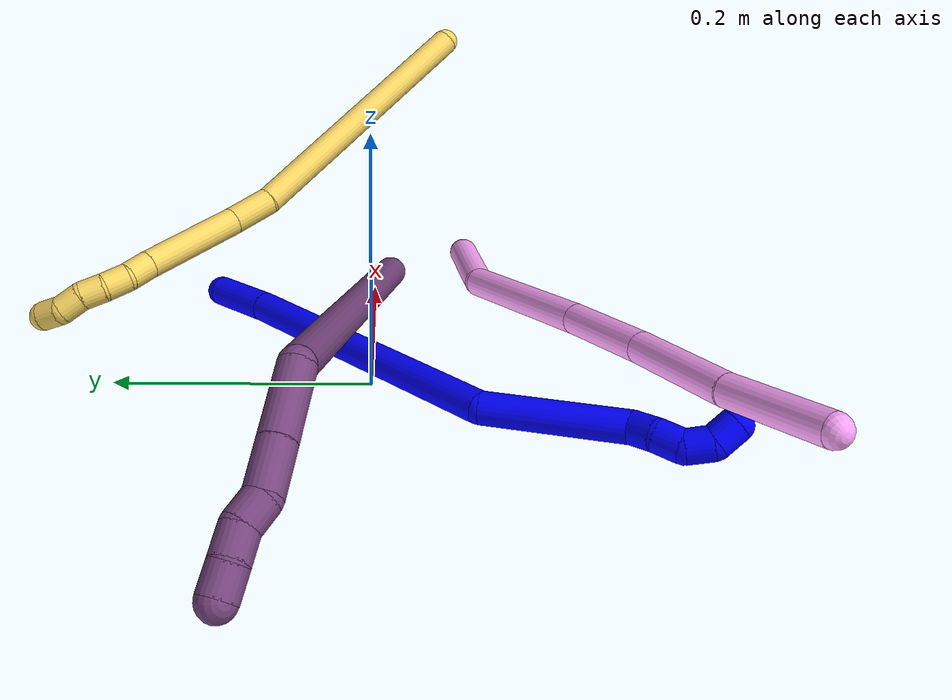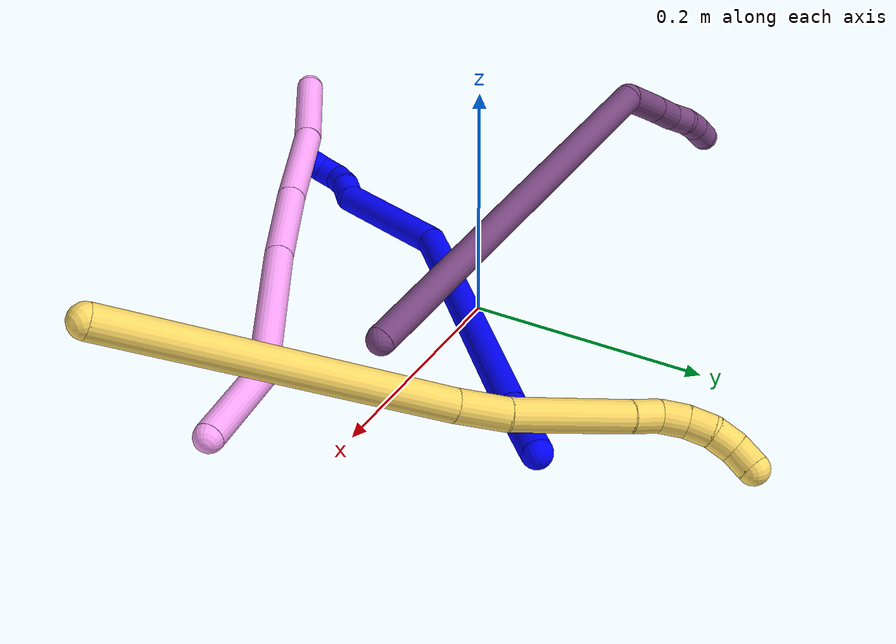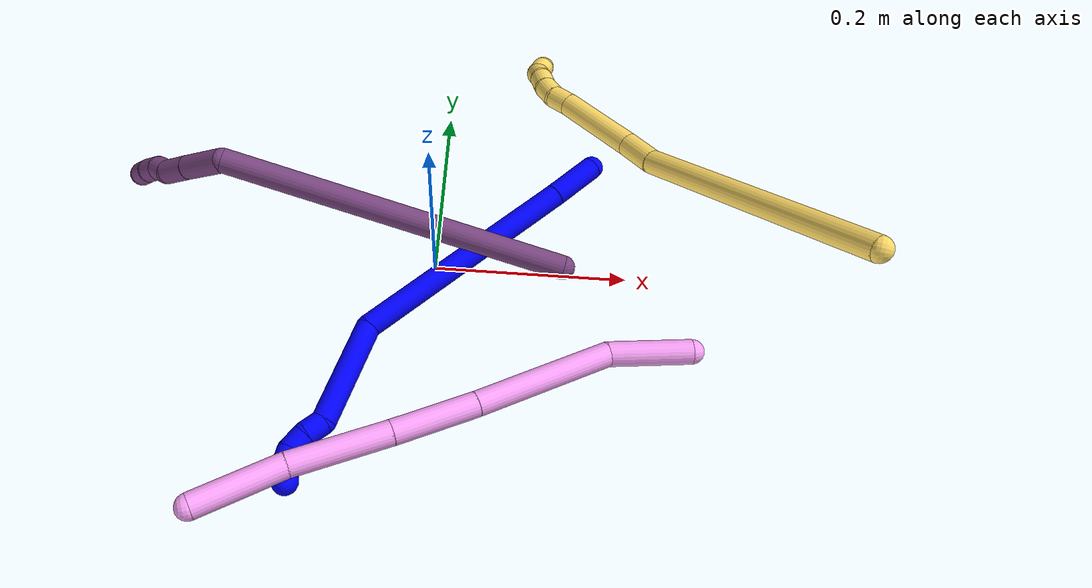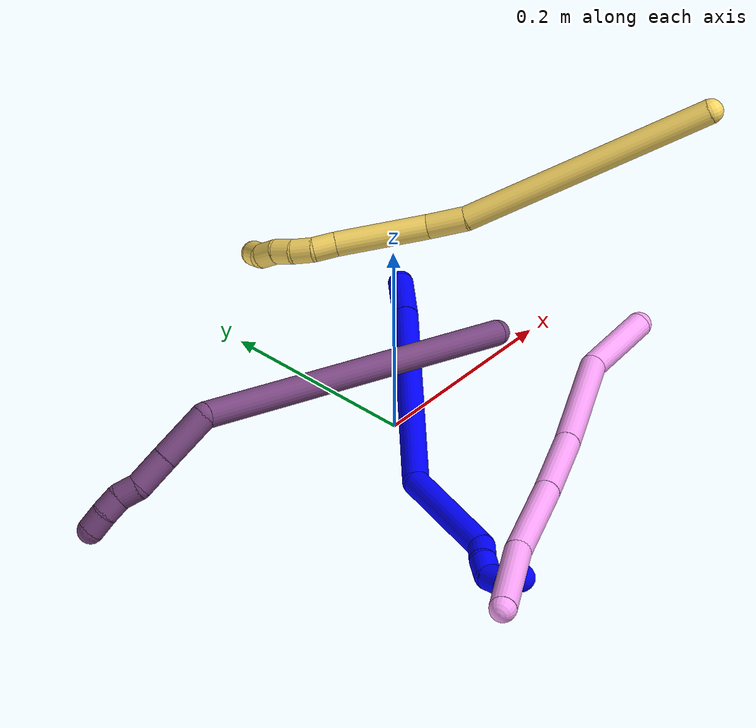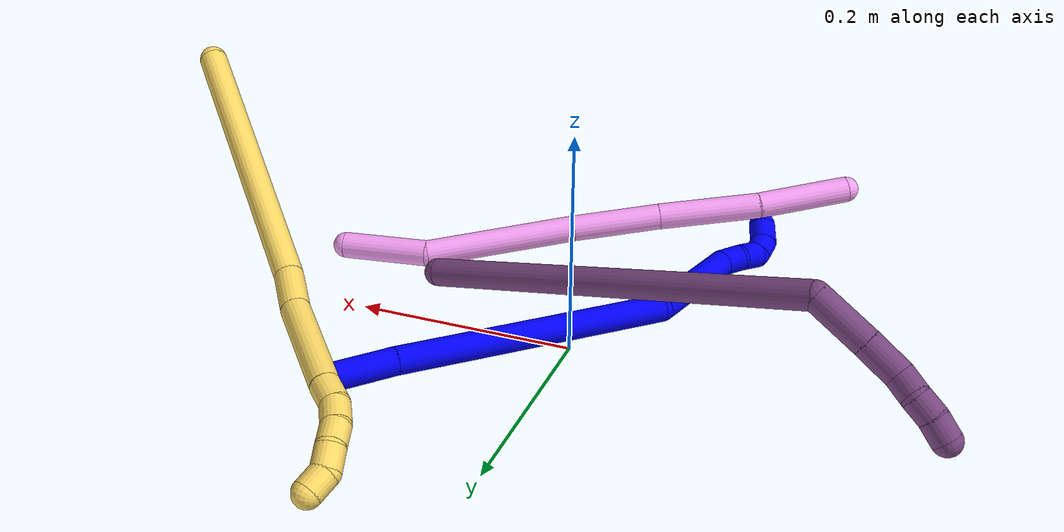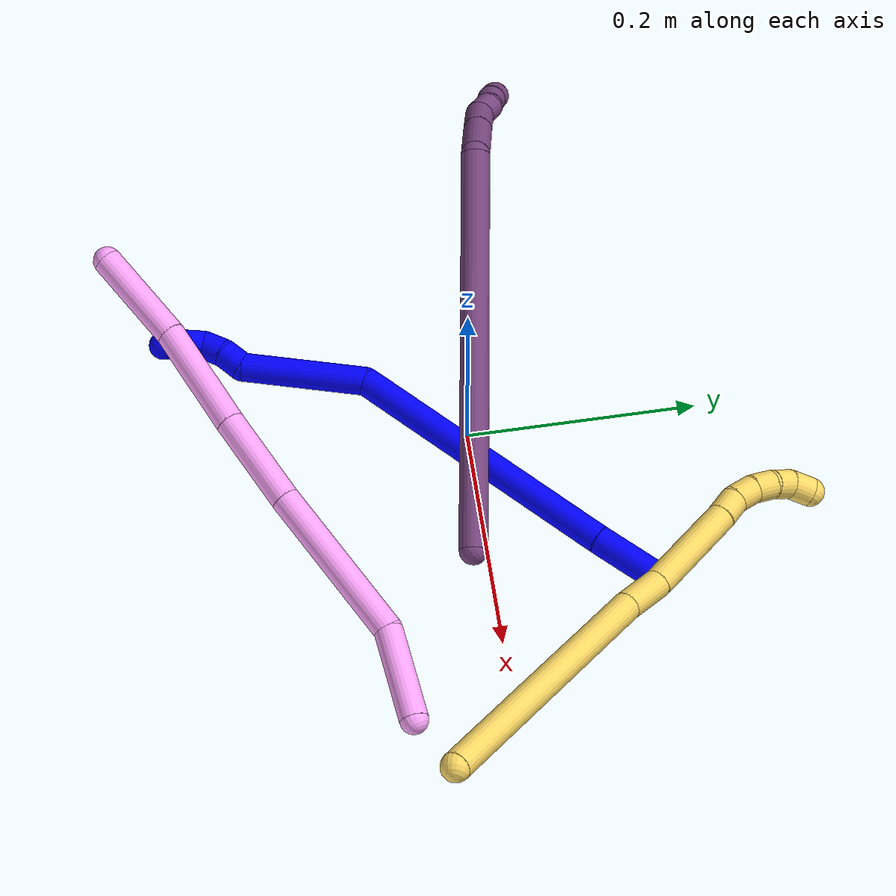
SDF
<sdf version="1.7">
 <world name="default">
  <model name="1">
   <static>0</static>
   <link name="1">
    <collision name="collision-cylinder-e_1_1_4">
     <pose>-0.01456 -0.024942 -0.000536 1.59228 -0.528302 -0.53923</pose>
     <geometry><cylinder><radius>0.0125</radius><length>0.057772</length></cylinder></geometry>
     <surface>
      <friction><ode><mu>1.16</mu><mu2>1.16</mu2><slip1>0</slip1><slip2>0</slip2></ode></friction>
      <contact><ode><kp>1e+06</kp><kd>1</kd><max_vel>0</max_vel><min_depth>0.001</min_depth></ode></contact>
     </surface>
    </collision>
    <visual name="visual-cylinder-e_1_1_4">
     <pose>-0.01456 -0.024942 -0.000536 1.59228 -0.528302 -0.53923</pose>
     <geometry><cylinder><radius>0.0125</radius><length>0.057772</length></cylinder></geometry>
     <material><ambient>0 0 1 1</ambient></material>
    </visual>
    <collision name="collision-cylinder-e_2_4_5">
     <pose>-0.097653 -0.155776 0.000362 1.55726 -0.574349 -0.567036</pose>
     <geometry><cylinder><radius>0.0125</radius><length>0.252285</length></cylinder></geometry>
     <surface>
      <friction><ode><mu>1.16</mu><mu2>1.16</mu2><slip1>0</slip1><slip2>0</slip2></ode></friction>
      <contact><ode><kp>1e+06</kp><kd>1</kd><max_vel>0</max_vel><min_depth>0.001</min_depth></ode></contact>
     </surface>
    </collision>
    <visual name="visual-cylinder-e_2_4_5">
     <pose>-0.097653 -0.155776 0.000362 1.55726 -0.574349 -0.567036</pose>
     <geometry><cylinder><radius>0.0125</radius><length>0.252285</length></cylinder></geometry>
     <material><ambient>0 0 1 1</ambient></material>
    </visual>
    <collision name="collision-cylinder-e_3_5_6">
     <pose>-0.183056 -0.306841 -0.023271 2.07741 -0.315677 -0.528076</pose>
     <geometry><cylinder><radius>0.0125</radius><length>0.108692</length></cylinder></geometry>
     <surface>
      <friction><ode><mu>1.16</mu><mu2>1.16</mu2><slip1>0</slip1><slip2>0</slip2></ode></friction>
      <contact><ode><kp>1e+06</kp><kd>1</kd><max_vel>0</max_vel><min_depth>0.001</min_depth></ode></contact>
     </surface>
    </collision>
    <visual name="visual-cylinder-e_3_5_6">
     <pose>-0.183056 -0.306841 -0.023271 2.07741 -0.315677 -0.528076</pose>
     <geometry><cylinder><radius>0.0125</radius><length>0.108692</length></cylinder></geometry>
     <material><ambient>0 0 1 1</ambient></material>
    </visual>
    <collision name="collision-cylinder-e_4_6_7">
     <pose>-0.204757 -0.361294 -0.047804 1.51334 -0.478987 -0.45316</pose>
     <geometry><cylinder><radius>0.0125</radius><length>0.020954</length></cylinder></geometry>
     <surface>
      <friction><ode><mu>1.16</mu><mu2>1.16</mu2><slip1>0</slip1><slip2>0</slip2></ode></friction>
      <contact><ode><kp>1e+06</kp><kd>1</kd><max_vel>0</max_vel><min_depth>0.001</min_depth></ode></contact>
     </surface>
    </collision>
    <visual name="visual-cylinder-e_4_6_7">
     <pose>-0.204757 -0.361294 -0.047804 1.51334 -0.478987 -0.45316</pose>
     <geometry><cylinder><radius>0.0125</radius><length>0.020954</length></cylinder></geometry>
     <material><ambient>0 0 1 1</ambient></material>
    </visual>
    <collision name="collision-cylinder-e_5_7_8">
     <pose>-0.215298 -0.378702 -0.049162 1.7996 -0.600357 -0.743538</pose>
     <geometry><cylinder><radius>0.0125</radius><length>0.020221</length></cylinder></geometry>
     <surface>
      <friction><ode><mu>1.16</mu><mu2>1.16</mu2><slip1>0</slip1><slip2>0</slip2></ode></friction>
      <contact><ode><kp>1e+06</kp><kd>1</kd><max_vel>0</max_vel><min_depth>0.001</min_depth></ode></contact>
     </surface>
    </collision>
    <visual name="visual-cylinder-e_5_7_8">
     <pose>-0.215298 -0.378702 -0.049162 1.7996 -0.600357 -0.743538</pose>
     <geometry><cylinder><radius>0.0125</radius><length>0.020221</length></cylinder></geometry>
     <material><ambient>0 0 1 1</ambient></material>
    </visual>
    <collision name="collision-cylinder-e_6_8_9">
     <pose>-0.221551 -0.395398 -0.056208 2.11217 -0.054146 -0.095689</pose>
     <geometry><cylinder><radius>0.0125</radius><length>0.020031</length></cylinder></geometry>
     <surface>
      <friction><ode><mu>1.16</mu><mu2>1.16</mu2><slip1>0</slip1><slip2>0</slip2></ode></friction>
      <contact><ode><kp>1e+06</kp><kd>1</kd><max_vel>0</max_vel><min_depth>0.001</min_depth></ode></contact>
     </surface>
    </collision>
    <visual name="visual-cylinder-e_6_8_9">
     <pose>-0.221551 -0.395398 -0.056208 2.11217 -0.054146 -0.095689</pose>
     <geometry><cylinder><radius>0.0125</radius><length>0.020031</length></cylinder></geometry>
     <material><ambient>0 0 1 1</ambient></material>
    </visual>
    <collision name="collision-cylinder-e_7_9_2">
     <pose>-0.217124 -0.411019 -0.066466 2.19746 0.518817 0.958709</pose>
     <geometry><cylinder><radius>0.0125</radius><length>0.020046</length></cylinder></geometry>
     <surface>
      <friction><ode><mu>1.16</mu><mu2>1.16</mu2><slip1>0</slip1><slip2>0</slip2></ode></friction>
      <contact><ode><kp>1e+06</kp><kd>1</kd><max_vel>0</max_vel><min_depth>0.001</min_depth></ode></contact>
     </surface>
    </collision>
    <visual name="visual-cylinder-e_7_9_2">
     <pose>-0.217124 -0.411019 -0.066466 2.19746 0.518817 0.958709</pose>
     <geometry><cylinder><radius>0.0125</radius><length>0.020046</length></cylinder></geometry>
     <material><ambient>0 0 1 1</ambient></material>
    </visual>
    <collision name="collision-sphere-2">
     <pose>-0.212154 -0.418069 -0.071571 0 -0 0</pose>
     <geometry><sphere><radius>0.0125</radius></sphere></geometry>
     <surface>
      <friction><ode><mu>1.16</mu><mu2>1.16</mu2><slip1>0</slip1><slip2>0</slip2></ode></friction>
      <contact><ode><kp>1e+06</kp><kd>1</kd><max_vel>0</max_vel><min_depth>0.001</min_depth></ode></contact>
     </surface>
    </collision>
    <visual name="visual-sphere-2">
     <pose>-0.212154 -0.418069 -0.071571 0 -0 0</pose>
     <geometry><sphere><radius>0.0125</radius></sphere></geometry>
     <material><ambient>0 0 1 1</ambient></material>
    </visual>
    <collision name="collision-sphere-9">
     <pose>-0.222093 -0.403969 -0.061362 0 -0 0</pose>
     <geometry><sphere><radius>0.0125</radius></sphere></geometry>
     <surface>
      <friction><ode><mu>1.16</mu><mu2>1.16</mu2><slip1>0</slip1><slip2>0</slip2></ode></friction>
      <contact><ode><kp>1e+06</kp><kd>1</kd><max_vel>0</max_vel><min_depth>0.001</min_depth></ode></contact>
     </surface>
    </collision>
    <visual name="visual-sphere-9">
     <pose>-0.222093 -0.403969 -0.061362 0 -0 0</pose>
     <geometry><sphere><radius>0.0125</radius></sphere></geometry>
     <material><ambient>0 0 1 1</ambient></material>
    </visual>
    <collision name="collision-sphere-4">
     <pose>-0.029121 -0.049884 -0.001072 0 -0 0</pose>
     <geometry><sphere><radius>0.0125</radius></sphere></geometry>
     <surface>
      <friction><ode><mu>1.16</mu><mu2>1.16</mu2><slip1>0</slip1><slip2>0</slip2></ode></friction>
      <contact><ode><kp>1e+06</kp><kd>1</kd><max_vel>0</max_vel><min_depth>0.001</min_depth></ode></contact>
     </surface>
    </collision>
    <visual name="visual-sphere-4">
     <pose>-0.029121 -0.049884 -0.001072 0 -0 0</pose>
     <geometry><sphere><radius>0.0125</radius></sphere></geometry>
     <material><ambient>0 0 1 1</ambient></material>
    </visual>
    <collision name="collision-sphere-1">
     <geometry><sphere><radius>0.0125</radius></sphere></geometry>
     <surface>
      <friction><ode><mu>1.16</mu><mu2>1.16</mu2><slip1>0</slip1><slip2>0</slip2></ode></friction>
      <contact><ode><kp>1e+06</kp><kd>1</kd><max_vel>0</max_vel><min_depth>0.001</min_depth></ode></contact>
     </surface>
    </collision>
    <visual name="visual-sphere-1">
     <geometry><sphere><radius>0.0125</radius></sphere></geometry>
     <material><ambient>0 0 1 1</ambient></material>
    </visual>
    <collision name="collision-sphere-8">
     <pose>-0.221009 -0.386827 -0.051055 0 -0 0</pose>
     <geometry><sphere><radius>0.0125</radius></sphere></geometry>
     <surface>
      <friction><ode><mu>1.16</mu><mu2>1.16</mu2><slip1>0</slip1><slip2>0</slip2></ode></friction>
      <contact><ode><kp>1e+06</kp><kd>1</kd><max_vel>0</max_vel><min_depth>0.001</min_depth></ode></contact>
     </surface>
    </collision>
    <visual name="visual-sphere-8">
     <pose>-0.221009 -0.386827 -0.051055 0 -0 0</pose>
     <geometry><sphere><radius>0.0125</radius></sphere></geometry>
     <material><ambient>0 0 1 1</ambient></material>
    </visual>
    <collision name="collision-sphere-5">
     <pose>-0.166184 -0.261669 0.001795 0 -0 0</pose>
     <geometry><sphere><radius>0.0125</radius></sphere></geometry>
     <surface>
      <friction><ode><mu>1.16</mu><mu2>1.16</mu2><slip1>0</slip1><slip2>0</slip2></ode></friction>
      <contact><ode><kp>1e+06</kp><kd>1</kd><max_vel>0</max_vel><min_depth>0.001</min_depth></ode></contact>
     </surface>
    </collision>
    <visual name="visual-sphere-5">
     <pose>-0.166184 -0.261669 0.001795 0 -0 0</pose>
     <geometry><sphere><radius>0.0125</radius></sphere></geometry>
     <material><ambient>0 0 1 1</ambient></material>
    </visual>
    <collision name="collision-sphere-6">
     <pose>-0.199929 -0.352012 -0.048338 0 -0 0</pose>
     <geometry><sphere><radius>0.0125</radius></sphere></geometry>
     <surface>
      <friction><ode><mu>1.16</mu><mu2>1.16</mu2><slip1>0</slip1><slip2>0</slip2></ode></friction>
      <contact><ode><kp>1e+06</kp><kd>1</kd><max_vel>0</max_vel><min_depth>0.001</min_depth></ode></contact>
     </surface>
    </collision>
    <visual name="visual-sphere-6">
     <pose>-0.199929 -0.352012 -0.048338 0 -0 0</pose>
     <geometry><sphere><radius>0.0125</radius></sphere></geometry>
     <material><ambient>0 0 1 1</ambient></material>
    </visual>
    <collision name="collision-sphere-7">
     <pose>-0.209586 -0.370577 -0.04727 0 -0 0</pose>
     <geometry><sphere><radius>0.0125</radius></sphere></geometry>
     <surface>
      <friction><ode><mu>1.16</mu><mu2>1.16</mu2><slip1>0</slip1><slip2>0</slip2></ode></friction>
      <contact><ode><kp>1e+06</kp><kd>1</kd><max_vel>0</max_vel><min_depth>0.001</min_depth></ode></contact>
     </surface>
    </collision>
    <visual name="visual-sphere-7">
     <pose>-0.209586 -0.370577 -0.04727 0 -0 0</pose>
     <geometry><sphere><radius>0.0125</radius></sphere></geometry>
     <material><ambient>0 0 1 1</ambient></material>
    </visual>
    <inertial>
     <pose>-0.125617 -0.210959 -0.013846 0 -0 0</pose>
     <mass>0.5</mass>
     <inertia>
      <ixx>0.000377</ixx>
      <ixy>0</ixy>
      <ixz>0</ixz>
      <iyy>-0.000321</iyy>
      <iyz>0</iyz>
      <izz>0.002016</izz>
     </inertia>
    </inertial>
   </link>
   <pose>0.162557 0.135919 0.011476 -0.957283 -0.911747 0.267832</pose>
  </model>
  <model name="4">
   <static>0</static>
   <link name="4">
    <collision name="collision-cylinder-e_1_1_4">
     <pose>0.007996 0.004889 -0.040845 -3.02245 0.19198 -2.03245</pose>
     <geometry><cylinder><radius>0.0125</radius><length>0.083813</length></cylinder></geometry>
     <surface>
      <friction><ode><mu>1.16</mu><mu2>1.16</mu2><slip1>0</slip1><slip2>0</slip2></ode></friction>
      <contact><ode><kp>1e+06</kp><kd>1</kd><max_vel>0</max_vel><min_depth>0.001</min_depth></ode></contact>
     </surface>
    </collision>
    <visual name="visual-cylinder-e_1_1_4">
     <pose>0.007996 0.004889 -0.040845 -3.02245 0.19198 -2.03245</pose>
     <geometry><cylinder><radius>0.0125</radius><length>0.083813</length></cylinder></geometry>
     <material><ambient>1 0.65098 0.996078 1</ambient></material>
    </visual>
    <collision name="collision-cylinder-e_2_4_5">
     <pose>0.002675 0.007701 -0.152722 3.11235 -0.185244 -2.82934</pose>
     <geometry><cylinder><radius>0.0125</radius><length>0.144599</length></cylinder></geometry>
     <surface>
      <friction><ode><mu>1.16</mu><mu2>1.16</mu2><slip1>0</slip1><slip2>0</slip2></ode></friction>
      <contact><ode><kp>1e+06</kp><kd>1</kd><max_vel>0</max_vel><min_depth>0.001</min_depth></ode></contact>
     </surface>
    </collision>
    <visual name="visual-cylinder-e_2_4_5">
     <pose>0.002675 0.007701 -0.152722 3.11235 -0.185244 -2.82934</pose>
     <geometry><cylinder><radius>0.0125</radius><length>0.144599</length></cylinder></geometry>
     <material><ambient>1 0.65098 0.996078 1</ambient></material>
    </visual>
    <collision name="collision-cylinder-e_3_5_6">
     <pose>-0.016622 0.005123 -0.265676 3.12965 -0.141684 -2.97371</pose>
     <geometry><cylinder><radius>0.0125</radius><length>0.084699</length></cylinder></geometry>
     <surface>
      <friction><ode><mu>1.16</mu><mu2>1.16</mu2><slip1>0</slip1><slip2>0</slip2></ode></friction>
      <contact><ode><kp>1e+06</kp><kd>1</kd><max_vel>0</max_vel><min_depth>0.001</min_depth></ode></contact>
     </surface>
    </collision>
    <visual name="visual-cylinder-e_3_5_6">
     <pose>-0.016622 0.005123 -0.265676 3.12965 -0.141684 -2.97371</pose>
     <geometry><cylinder><radius>0.0125</radius><length>0.084699</length></cylinder></geometry>
     <material><ambient>1 0.65098 0.996078 1</ambient></material>
    </visual>
    <collision name="collision-cylinder-e_4_6_7">
     <pose>-0.027709 0.004419 -0.356409 3.13743 -0.104261 -3.06182</pose>
     <geometry><cylinder><radius>0.0125</radius><length>0.098155</length></cylinder></geometry>
     <surface>
      <friction><ode><mu>1.16</mu><mu2>1.16</mu2><slip1>0</slip1><slip2>0</slip2></ode></friction>
      <contact><ode><kp>1e+06</kp><kd>1</kd><max_vel>0</max_vel><min_depth>0.001</min_depth></ode></contact>
     </surface>
    </collision>
    <visual name="visual-cylinder-e_4_6_7">
     <pose>-0.027709 0.004419 -0.356409 3.13743 -0.104261 -3.06182</pose>
     <geometry><cylinder><radius>0.0125</radius><length>0.098155</length></cylinder></geometry>
     <material><ambient>1 0.65098 0.996078 1</ambient></material>
    </visual>
    <collision name="collision-cylinder-e_5_7_2">
     <pose>-0.042373 0.001679 -0.448471 3.083 -0.217084 -2.61617</pose>
     <geometry><cylinder><radius>0.0125</radius><length>0.088735</length></cylinder></geometry>
     <surface>
      <friction><ode><mu>1.16</mu><mu2>1.16</mu2><slip1>0</slip1><slip2>0</slip2></ode></friction>
      <contact><ode><kp>1e+06</kp><kd>1</kd><max_vel>0</max_vel><min_depth>0.001</min_depth></ode></contact>
     </surface>
    </collision>
    <visual name="visual-cylinder-e_5_7_2">
     <pose>-0.042373 0.001679 -0.448471 3.083 -0.217084 -2.61617</pose>
     <geometry><cylinder><radius>0.0125</radius><length>0.088735</length></cylinder></geometry>
     <material><ambient>1 0.65098 0.996078 1</ambient></material>
    </visual>
    <collision name="collision-sphere-2">
     <pose>-0.051929 -0.000858 -0.491722 0 -0 0</pose>
     <geometry><sphere><radius>0.0125</radius></sphere></geometry>
     <surface>
      <friction><ode><mu>1.16</mu><mu2>1.16</mu2><slip1>0</slip1><slip2>0</slip2></ode></friction>
      <contact><ode><kp>1e+06</kp><kd>1</kd><max_vel>0</max_vel><min_depth>0.001</min_depth></ode></contact>
     </surface>
    </collision>
    <visual name="visual-sphere-2">
     <pose>-0.051929 -0.000858 -0.491722 0 -0 0</pose>
     <geometry><sphere><radius>0.0125</radius></sphere></geometry>
     <material><ambient>1 0.65098 0.996078 1</ambient></material>
    </visual>
    <collision name="collision-sphere-7">
     <pose>-0.032817 0.004216 -0.405219 0 -0 0</pose>
     <geometry><sphere><radius>0.0125</radius></sphere></geometry>
     <surface>
      <friction><ode><mu>1.16</mu><mu2>1.16</mu2><slip1>0</slip1><slip2>0</slip2></ode></friction>
      <contact><ode><kp>1e+06</kp><kd>1</kd><max_vel>0</max_vel><min_depth>0.001</min_depth></ode></contact>
     </surface>
    </collision>
    <visual name="visual-sphere-7">
     <pose>-0.032817 0.004216 -0.405219 0 -0 0</pose>
     <geometry><sphere><radius>0.0125</radius></sphere></geometry>
     <material><ambient>1 0.65098 0.996078 1</ambient></material>
    </visual>
    <collision name="collision-sphere-6">
     <pose>-0.022602 0.004622 -0.307598 0 -0 0</pose>
     <geometry><sphere><radius>0.0125</radius></sphere></geometry>
     <surface>
      <friction><ode><mu>1.16</mu><mu2>1.16</mu2><slip1>0</slip1><slip2>0</slip2></ode></friction>
      <contact><ode><kp>1e+06</kp><kd>1</kd><max_vel>0</max_vel><min_depth>0.001</min_depth></ode></contact>
     </surface>
    </collision>
    <visual name="visual-sphere-6">
     <pose>-0.022602 0.004622 -0.307598 0 -0 0</pose>
     <geometry><sphere><radius>0.0125</radius></sphere></geometry>
     <material><ambient>1 0.65098 0.996078 1</ambient></material>
    </visual>
    <collision name="collision-sphere-5">
     <pose>-0.010641 0.005624 -0.223754 0 -0 0</pose>
     <geometry><sphere><radius>0.0125</radius></sphere></geometry>
     <surface>
      <friction><ode><mu>1.16</mu><mu2>1.16</mu2><slip1>0</slip1><slip2>0</slip2></ode></friction>
      <contact><ode><kp>1e+06</kp><kd>1</kd><max_vel>0</max_vel><min_depth>0.001</min_depth></ode></contact>
     </surface>
    </collision>
    <visual name="visual-sphere-5">
     <pose>-0.010641 0.005624 -0.223754 0 -0 0</pose>
     <geometry><sphere><radius>0.0125</radius></sphere></geometry>
     <material><ambient>1 0.65098 0.996078 1</ambient></material>
    </visual>
    <collision name="collision-sphere-1">
     <geometry><sphere><radius>0.0125</radius></sphere></geometry>
     <surface>
      <friction><ode><mu>1.16</mu><mu2>1.16</mu2><slip1>0</slip1><slip2>0</slip2></ode></friction>
      <contact><ode><kp>1e+06</kp><kd>1</kd><max_vel>0</max_vel><min_depth>0.001</min_depth></ode></contact>
     </surface>
    </collision>
    <visual name="visual-sphere-1">
     <geometry><sphere><radius>0.0125</radius></sphere></geometry>
     <material><ambient>1 0.65098 0.996078 1</ambient></material>
    </visual>
    <collision name="collision-sphere-4">
     <pose>0.015992 0.009779 -0.08169 0 -0 0</pose>
     <geometry><sphere><radius>0.0125</radius></sphere></geometry>
     <surface>
      <friction><ode><mu>1.16</mu><mu2>1.16</mu2><slip1>0</slip1><slip2>0</slip2></ode></friction>
      <contact><ode><kp>1e+06</kp><kd>1</kd><max_vel>0</max_vel><min_depth>0.001</min_depth></ode></contact>
     </surface>
    </collision>
    <visual name="visual-sphere-4">
     <pose>0.015992 0.009779 -0.08169 0 -0 0</pose>
     <geometry><sphere><radius>0.0125</radius></sphere></geometry>
     <material><ambient>1 0.65098 0.996078 1</ambient></material>
    </visual>
    <inertial>
     <pose>-0.013661 0.00508 -0.245575 0 -0 0</pose>
     <mass>0.5</mass>
     <inertia>
      <ixx>-0.000624</ixx>
      <ixy>0</ixy>
      <ixz>0</ixz>
      <iyy>0.000289</iyy>
      <iyz>0</iyz>
      <izz>3.4e-05</izz>
     </inertia>
    </inertial>
   </link>
   <pose>0.263365 -0.084213 0.012534 1.62122 0.624529 1.94171</pose>
  </model>
  <model name="5">
   <static>0</static>
   <link name="5">
    <collision name="collision-cylinder-e_1_1_4">
     <pose>-0.061371 0.0459 0.106477 -0.407008 -0.486807 0.1024</pose>
     <geometry><cylinder><radius>0.0125</radius><length>0.262379</length></cylinder></geometry>
     <surface>
      <friction><ode><mu>1.16</mu><mu2>1.16</mu2><slip1>0</slip1><slip2>0</slip2></ode></friction>
      <contact><ode><kp>1e+06</kp><kd>1</kd><max_vel>0</max_vel><min_depth>0.001</min_depth></ode></contact>
     </surface>
    </collision>
    <visual name="visual-cylinder-e_1_1_4">
     <pose>-0.061371 0.0459 0.106477 -0.407008 -0.486807 0.1024</pose>
     <geometry><cylinder><radius>0.0125</radius><length>0.262379</length></cylinder></geometry>
     <material><ambient>1 0.858824 0.4 1</ambient></material>
    </visual>
    <collision name="collision-cylinder-e_2_4_5">
     <pose>-0.130003 0.102115 0.228318 -0.591255 -0.373895 0.115088</pose>
     <geometry><cylinder><radius>0.0125</radius><length>0.039755</length></cylinder></geometry>
     <surface>
      <friction><ode><mu>1.16</mu><mu2>1.16</mu2><slip1>0</slip1><slip2>0</slip2></ode></friction>
      <contact><ode><kp>1e+06</kp><kd>1</kd><max_vel>0</max_vel><min_depth>0.001</min_depth></ode></contact>
     </surface>
    </collision>
    <visual name="visual-cylinder-e_2_4_5">
     <pose>-0.130003 0.102115 0.228318 -0.591255 -0.373895 0.115088</pose>
     <geometry><cylinder><radius>0.0125</radius><length>0.039755</length></cylinder></geometry>
     <material><ambient>1 0.858824 0.4 1</ambient></material>
    </visual>
    <collision name="collision-cylinder-e_3_5_6">
     <pose>-0.14886 0.134104 0.28298 -0.504024 -0.252874 0.065437</pose>
     <geometry><cylinder><radius>0.0125</radius><length>0.09271</length></cylinder></geometry>
     <surface>
      <friction><ode><mu>1.16</mu><mu2>1.16</mu2><slip1>0</slip1><slip2>0</slip2></ode></friction>
      <contact><ode><kp>1e+06</kp><kd>1</kd><max_vel>0</max_vel><min_depth>0.001</min_depth></ode></contact>
     </surface>
    </collision>
    <visual name="visual-cylinder-e_3_5_6">
     <pose>-0.14886 0.134104 0.28298 -0.504024 -0.252874 0.065437</pose>
     <geometry><cylinder><radius>0.0125</radius><length>0.09271</length></cylinder></geometry>
     <material><ambient>1 0.858824 0.4 1</ambient></material>
    </visual>
    <collision name="collision-cylinder-e_4_6_7">
     <pose>-0.163235 0.160231 0.332441 -0.412904 -0.245311 0.051625</pose>
     <geometry><cylinder><radius>0.0125</radius><length>0.022873</length></cylinder></geometry>
     <surface>
      <friction><ode><mu>1.16</mu><mu2>1.16</mu2><slip1>0</slip1><slip2>0</slip2></ode></friction>
      <contact><ode><kp>1e+06</kp><kd>1</kd><max_vel>0</max_vel><min_depth>0.001</min_depth></ode></contact>
     </surface>
    </collision>
    <visual name="visual-cylinder-e_4_6_7">
     <pose>-0.163235 0.160231 0.332441 -0.412904 -0.245311 0.051625</pose>
     <geometry><cylinder><radius>0.0125</radius><length>0.022873</length></cylinder></geometry>
     <material><ambient>1 0.858824 0.4 1</ambient></material>
    </visual>
    <collision name="collision-cylinder-e_5_7_8">
     <pose>-0.169645 0.171414 0.35017 -0.727059 -0.344405 0.132143</pose>
     <geometry><cylinder><radius>0.0125</radius><length>0.021518</length></cylinder></geometry>
     <surface>
      <friction><ode><mu>1.16</mu><mu2>1.16</mu2><slip1>0</slip1><slip2>0</slip2></ode></friction>
      <contact><ode><kp>1e+06</kp><kd>1</kd><max_vel>0</max_vel><min_depth>0.001</min_depth></ode></contact>
     </surface>
    </collision>
    <visual name="visual-cylinder-e_5_7_8">
     <pose>-0.169645 0.171414 0.35017 -0.727059 -0.344405 0.132143</pose>
     <geometry><cylinder><radius>0.0125</radius><length>0.021518</length></cylinder></geometry>
     <material><ambient>1 0.858824 0.4 1</ambient></material>
    </visual>
    <collision name="collision-cylinder-e_6_8_9">
     <pose>-0.177495 0.185659 0.362849 -0.973313 -0.434503 0.232529</pose>
     <geometry><cylinder><radius>0.0125</radius><length>0.020037</length></cylinder></geometry>
     <surface>
      <friction><ode><mu>1.16</mu><mu2>1.16</mu2><slip1>0</slip1><slip2>0</slip2></ode></friction>
      <contact><ode><kp>1e+06</kp><kd>1</kd><max_vel>0</max_vel><min_depth>0.001</min_depth></ode></contact>
     </surface>
    </collision>
    <visual name="visual-cylinder-e_6_8_9">
     <pose>-0.177495 0.185659 0.362849 -0.973313 -0.434503 0.232529</pose>
     <geometry><cylinder><radius>0.0125</radius><length>0.020037</length></cylinder></geometry>
     <material><ambient>1 0.858824 0.4 1</ambient></material>
    </visual>
    <collision name="collision-cylinder-e_7_9_10">
     <pose>-0.188515 0.199475 0.372459 -0.951008 -0.720787 0.383326</pose>
     <geometry><cylinder><radius>0.0125</radius><length>0.020613</length></cylinder></geometry>
     <surface>
      <friction><ode><mu>1.16</mu><mu2>1.16</mu2><slip1>0</slip1><slip2>0</slip2></ode></friction>
      <contact><ode><kp>1e+06</kp><kd>1</kd><max_vel>0</max_vel><min_depth>0.001</min_depth></ode></contact>
     </surface>
    </collision>
    <visual name="visual-cylinder-e_7_9_10">
     <pose>-0.188515 0.199475 0.372459 -0.951008 -0.720787 0.383326</pose>
     <geometry><cylinder><radius>0.0125</radius><length>0.020613</length></cylinder></geometry>
     <material><ambient>1 0.858824 0.4 1</ambient></material>
    </visual>
    <collision name="collision-cylinder-e_8_10_2">
     <pose>-0.201165 0.213954 0.376631 -1.61053 -0.620521 0.644008</pose>
     <geometry><cylinder><radius>0.0125</radius><length>0.020115</length></cylinder></geometry>
     <surface>
      <friction><ode><mu>1.16</mu><mu2>1.16</mu2><slip1>0</slip1><slip2>0</slip2></ode></friction>
      <contact><ode><kp>1e+06</kp><kd>1</kd><max_vel>0</max_vel><min_depth>0.001</min_depth></ode></contact>
     </surface>
    </collision>
    <visual name="visual-cylinder-e_8_10_2">
     <pose>-0.201165 0.213954 0.376631 -1.61053 -0.620521 0.644008</pose>
     <geometry><cylinder><radius>0.0125</radius><length>0.020115</length></cylinder></geometry>
     <material><ambient>1 0.858824 0.4 1</ambient></material>
    </visual>
    <collision name="collision-sphere-2">
     <pose>-0.207013 0.22213 0.376306 0 -0 0</pose>
     <geometry><sphere><radius>0.0125</radius></sphere></geometry>
     <surface>
      <friction><ode><mu>1.16</mu><mu2>1.16</mu2><slip1>0</slip1><slip2>0</slip2></ode></friction>
      <contact><ode><kp>1e+06</kp><kd>1</kd><max_vel>0</max_vel><min_depth>0.001</min_depth></ode></contact>
     </surface>
    </collision>
    <visual name="visual-sphere-2">
     <pose>-0.207013 0.22213 0.376306 0 -0 0</pose>
     <geometry><sphere><radius>0.0125</radius></sphere></geometry>
     <material><ambient>1 0.858824 0.4 1</ambient></material>
    </visual>
    <collision name="collision-sphere-10">
     <pose>-0.195317 0.205778 0.376957 0 -0 0</pose>
     <geometry><sphere><radius>0.0125</radius></sphere></geometry>
     <surface>
      <friction><ode><mu>1.16</mu><mu2>1.16</mu2><slip1>0</slip1><slip2>0</slip2></ode></friction>
      <contact><ode><kp>1e+06</kp><kd>1</kd><max_vel>0</max_vel><min_depth>0.001</min_depth></ode></contact>
     </surface>
    </collision>
    <visual name="visual-sphere-10">
     <pose>-0.195317 0.205778 0.376957 0 -0 0</pose>
     <geometry><sphere><radius>0.0125</radius></sphere></geometry>
     <material><ambient>1 0.858824 0.4 1</ambient></material>
    </visual>
    <collision name="collision-sphere-9">
     <pose>-0.181713 0.193172 0.367961 0 -0 0</pose>
     <geometry><sphere><radius>0.0125</radius></sphere></geometry>
     <surface>
      <friction><ode><mu>1.16</mu><mu2>1.16</mu2><slip1>0</slip1><slip2>0</slip2></ode></friction>
      <contact><ode><kp>1e+06</kp><kd>1</kd><max_vel>0</max_vel><min_depth>0.001</min_depth></ode></contact>
     </surface>
    </collision>
    <visual name="visual-sphere-9">
     <pose>-0.181713 0.193172 0.367961 0 -0 0</pose>
     <geometry><sphere><radius>0.0125</radius></sphere></geometry>
     <material><ambient>1 0.858824 0.4 1</ambient></material>
    </visual>
    <collision name="collision-sphere-4">
     <pose>-0.122743 0.0918 0.212955 0 -0 0</pose>
     <geometry><sphere><radius>0.0125</radius></sphere></geometry>
     <surface>
      <friction><ode><mu>1.16</mu><mu2>1.16</mu2><slip1>0</slip1><slip2>0</slip2></ode></friction>
      <contact><ode><kp>1e+06</kp><kd>1</kd><max_vel>0</max_vel><min_depth>0.001</min_depth></ode></contact>
     </surface>
    </collision>
    <visual name="visual-sphere-4">
     <pose>-0.122743 0.0918 0.212955 0 -0 0</pose>
     <geometry><sphere><radius>0.0125</radius></sphere></geometry>
     <material><ambient>1 0.858824 0.4 1</ambient></material>
    </visual>
    <collision name="collision-sphere-1">
     <geometry><sphere><radius>0.0125</radius></sphere></geometry>
     <surface>
      <friction><ode><mu>1.16</mu><mu2>1.16</mu2><slip1>0</slip1><slip2>0</slip2></ode></friction>
      <contact><ode><kp>1e+06</kp><kd>1</kd><max_vel>0</max_vel><min_depth>0.001</min_depth></ode></contact>
     </surface>
    </collision>
    <visual name="visual-sphere-1">
     <geometry><sphere><radius>0.0125</radius></sphere></geometry>
     <material><ambient>1 0.858824 0.4 1</ambient></material>
    </visual>
    <collision name="collision-sphere-8">
     <pose>-0.173278 0.178146 0.357736 0 -0 0</pose>
     <geometry><sphere><radius>0.0125</radius></sphere></geometry>
     <surface>
      <friction><ode><mu>1.16</mu><mu2>1.16</mu2><slip1>0</slip1><slip2>0</slip2></ode></friction>
      <contact><ode><kp>1e+06</kp><kd>1</kd><max_vel>0</max_vel><min_depth>0.001</min_depth></ode></contact>
     </surface>
    </collision>
    <visual name="visual-sphere-8">
     <pose>-0.173278 0.178146 0.357736 0 -0 0</pose>
     <geometry><sphere><radius>0.0125</radius></sphere></geometry>
     <material><ambient>1 0.858824 0.4 1</ambient></material>
    </visual>
    <collision name="collision-sphere-5">
     <pose>-0.137263 0.112429 0.24368 0 -0 0</pose>
     <geometry><sphere><radius>0.0125</radius></sphere></geometry>
     <surface>
      <friction><ode><mu>1.16</mu><mu2>1.16</mu2><slip1>0</slip1><slip2>0</slip2></ode></friction>
      <contact><ode><kp>1e+06</kp><kd>1</kd><max_vel>0</max_vel><min_depth>0.001</min_depth></ode></contact>
     </surface>
    </collision>
    <visual name="visual-sphere-5">
     <pose>-0.137263 0.112429 0.24368 0 -0 0</pose>
     <geometry><sphere><radius>0.0125</radius></sphere></geometry>
     <material><ambient>1 0.858824 0.4 1</ambient></material>
    </visual>
    <collision name="collision-sphere-6">
     <pose>-0.160458 0.155779 0.32228 0 -0 0</pose>
     <geometry><sphere><radius>0.0125</radius></sphere></geometry>
     <surface>
      <friction><ode><mu>1.16</mu><mu2>1.16</mu2><slip1>0</slip1><slip2>0</slip2></ode></friction>
      <contact><ode><kp>1e+06</kp><kd>1</kd><max_vel>0</max_vel><min_depth>0.001</min_depth></ode></contact>
     </surface>
    </collision>
    <visual name="visual-sphere-6">
     <pose>-0.160458 0.155779 0.32228 0 -0 0</pose>
     <geometry><sphere><radius>0.0125</radius></sphere></geometry>
     <material><ambient>1 0.858824 0.4 1</ambient></material>
    </visual>
    <collision name="collision-sphere-7">
     <pose>-0.166013 0.164683 0.342603 0 -0 0</pose>
     <geometry><sphere><radius>0.0125</radius></sphere></geometry>
     <surface>
      <friction><ode><mu>1.16</mu><mu2>1.16</mu2><slip1>0</slip1><slip2>0</slip2></ode></friction>
      <contact><ode><kp>1e+06</kp><kd>1</kd><max_vel>0</max_vel><min_depth>0.001</min_depth></ode></contact>
     </surface>
    </collision>
    <visual name="visual-sphere-7">
     <pose>-0.166013 0.164683 0.342603 0 -0 0</pose>
     <geometry><sphere><radius>0.0125</radius></sphere></geometry>
     <material><ambient>1 0.858824 0.4 1</ambient></material>
    </visual>
    <inertial>
     <pose>-0.107889 0.096049 0.201824 0 -0 0</pose>
     <mass>0.5</mass>
     <inertia>
      <ixx>0.001541</ixx>
      <ixy>0</ixy>
      <ixz>0</ixz>
      <iyy>0.001647</iyy>
      <iyz>0</iyz>
      <izz>0.00019</izz>
     </inertia>
    </inertial>
   </link>
   <pose>0.385302 -0.067605 0.193651 1.89167 -1.35364 -2.1563</pose>
  </model>
  <model name="20">
   <static>0</static>
   <link name="20">
    <collision name="collision-cylinder-e_1_1_4">
     <pose>-0.11928 -0.005641 0.130721 0.043127 -0.739205 -0.01671</pose>
     <geometry><cylinder><radius>0.0125</radius><length>0.354105</length></cylinder></geometry>
     <surface>
      <friction><ode><mu>1.16</mu><mu2>1.16</mu2><slip1>0</slip1><slip2>0</slip2></ode></friction>
      <contact><ode><kp>1e+06</kp><kd>1</kd><max_vel>0</max_vel><min_depth>0.001</min_depth></ode></contact>
     </surface>
    </collision>
    <visual name="visual-cylinder-e_1_1_4">
     <pose>-0.11928 -0.005641 0.130721 0.043127 -0.739205 -0.01671</pose>
     <geometry><cylinder><radius>0.0125</radius><length>0.354105</length></cylinder></geometry>
     <material><ambient>0.478431 0.278431 0.509804 1</ambient></material>
    </visual>
    <collision name="collision-cylinder-e_2_4_5">
     <pose>-0.256035 -0.028281 0.269844 1.11171 -0.744576 -0.475953</pose>
     <geometry><cylinder><radius>0.0125</radius><length>0.051571</length></cylinder></geometry>
     <surface>
      <friction><ode><mu>1.16</mu><mu2>1.16</mu2><slip1>0</slip1><slip2>0</slip2></ode></friction>
      <contact><ode><kp>1e+06</kp><kd>1</kd><max_vel>0</max_vel><min_depth>0.001</min_depth></ode></contact>
     </surface>
    </collision>
    <visual name="visual-cylinder-e_2_4_5">
     <pose>-0.256035 -0.028281 0.269844 1.11171 -0.744576 -0.475953</pose>
     <geometry><cylinder><radius>0.0125</radius><length>0.051571</length></cylinder></geometry>
     <material><ambient>0.478431 0.278431 0.509804 1</ambient></material>
    </visual>
    <collision name="collision-cylinder-e_3_5_6">
     <pose>-0.285063 -0.056812 0.283404 1.15027 -0.740853 -0.493244</pose>
     <geometry><cylinder><radius>0.0125</radius><length>0.034241</length></cylinder></geometry>
     <surface>
      <friction><ode><mu>1.16</mu><mu2>1.16</mu2><slip1>0</slip1><slip2>0</slip2></ode></friction>
      <contact><ode><kp>1e+06</kp><kd>1</kd><max_vel>0</max_vel><min_depth>0.001</min_depth></ode></contact>
     </surface>
    </collision>
    <visual name="visual-cylinder-e_3_5_6">
     <pose>-0.285063 -0.056812 0.283404 1.15027 -0.740853 -0.493244</pose>
     <geometry><cylinder><radius>0.0125</radius><length>0.034241</length></cylinder></geometry>
     <material><ambient>0.478431 0.278431 0.509804 1</ambient></material>
    </visual>
    <collision name="collision-cylinder-e_4_6_7">
     <pose>-0.305599 -0.072714 0.289298 1.40383 -1.11244 -0.967972</pose>
     <geometry><cylinder><radius>0.0125</radius><length>0.020029</length></cylinder></geometry>
     <surface>
      <friction><ode><mu>1.16</mu><mu2>1.16</mu2><slip1>0</slip1><slip2>0</slip2></ode></friction>
      <contact><ode><kp>1e+06</kp><kd>1</kd><max_vel>0</max_vel><min_depth>0.001</min_depth></ode></contact>
     </surface>
    </collision>
    <visual name="visual-cylinder-e_4_6_7">
     <pose>-0.305599 -0.072714 0.289298 1.40383 -1.11244 -0.967972</pose>
     <geometry><cylinder><radius>0.0125</radius><length>0.020029</length></cylinder></geometry>
     <material><ambient>0.478431 0.278431 0.509804 1</ambient></material>
    </visual>
    <collision name="collision-cylinder-e_5_7_8">
     <pose>-0.321486 -0.08406 0.292011 1.29475 -0.761049 -0.587398</pose>
     <geometry><cylinder><radius>0.0125</radius><length>0.02003</length></cylinder></geometry>
     <surface>
      <friction><ode><mu>1.16</mu><mu2>1.16</mu2><slip1>0</slip1><slip2>0</slip2></ode></friction>
      <contact><ode><kp>1e+06</kp><kd>1</kd><max_vel>0</max_vel><min_depth>0.001</min_depth></ode></contact>
     </surface>
    </collision>
    <visual name="visual-cylinder-e_5_7_8">
     <pose>-0.321486 -0.08406 0.292011 1.29475 -0.761049 -0.587398</pose>
     <geometry><cylinder><radius>0.0125</radius><length>0.02003</length></cylinder></geometry>
     <material><ambient>0.478431 0.278431 0.509804 1</ambient></material>
    </visual>
    <collision name="collision-cylinder-e_6_8_2">
     <pose>-0.334974 -0.098568 0.294474 1.50622 -0.717194 -0.675751</pose>
     <geometry><cylinder><radius>0.0125</radius><length>0.020025</length></cylinder></geometry>
     <surface>
      <friction><ode><mu>1.16</mu><mu2>1.16</mu2><slip1>0</slip1><slip2>0</slip2></ode></friction>
      <contact><ode><kp>1e+06</kp><kd>1</kd><max_vel>0</max_vel><min_depth>0.001</min_depth></ode></contact>
     </surface>
    </collision>
    <visual name="visual-cylinder-e_6_8_2">
     <pose>-0.334974 -0.098568 0.294474 1.50622 -0.717194 -0.675751</pose>
     <geometry><cylinder><radius>0.0125</radius><length>0.020025</length></cylinder></geometry>
     <material><ambient>0.478431 0.278431 0.509804 1</ambient></material>
    </visual>
    <collision name="collision-sphere-2">
     <pose>-0.341555 -0.106098 0.294961 0 -0 0</pose>
     <geometry><sphere><radius>0.0125</radius></sphere></geometry>
     <surface>
      <friction><ode><mu>1.16</mu><mu2>1.16</mu2><slip1>0</slip1><slip2>0</slip2></ode></friction>
      <contact><ode><kp>1e+06</kp><kd>1</kd><max_vel>0</max_vel><min_depth>0.001</min_depth></ode></contact>
     </surface>
    </collision>
    <visual name="visual-sphere-2">
     <pose>-0.341555 -0.106098 0.294961 0 -0 0</pose>
     <geometry><sphere><radius>0.0125</radius></sphere></geometry>
     <material><ambient>0.478431 0.278431 0.509804 1</ambient></material>
    </visual>
    <collision name="collision-sphere-4">
     <pose>-0.238561 -0.011282 0.261442 0 -0 0</pose>
     <geometry><sphere><radius>0.0125</radius></sphere></geometry>
     <surface>
      <friction><ode><mu>1.16</mu><mu2>1.16</mu2><slip1>0</slip1><slip2>0</slip2></ode></friction>
      <contact><ode><kp>1e+06</kp><kd>1</kd><max_vel>0</max_vel><min_depth>0.001</min_depth></ode></contact>
     </surface>
    </collision>
    <visual name="visual-sphere-4">
     <pose>-0.238561 -0.011282 0.261442 0 -0 0</pose>
     <geometry><sphere><radius>0.0125</radius></sphere></geometry>
     <material><ambient>0.478431 0.278431 0.509804 1</ambient></material>
    </visual>
    <collision name="collision-sphere-1">
     <geometry><sphere><radius>0.0125</radius></sphere></geometry>
     <surface>
      <friction><ode><mu>1.16</mu><mu2>1.16</mu2><slip1>0</slip1><slip2>0</slip2></ode></friction>
      <contact><ode><kp>1e+06</kp><kd>1</kd><max_vel>0</max_vel><min_depth>0.001</min_depth></ode></contact>
     </surface>
    </collision>
    <visual name="visual-sphere-1">
     <geometry><sphere><radius>0.0125</radius></sphere></geometry>
     <material><ambient>0.478431 0.278431 0.509804 1</ambient></material>
    </visual>
    <collision name="collision-sphere-8">
     <pose>-0.328394 -0.091038 0.293987 0 -0 0</pose>
     <geometry><sphere><radius>0.0125</radius></sphere></geometry>
     <surface>
      <friction><ode><mu>1.16</mu><mu2>1.16</mu2><slip1>0</slip1><slip2>0</slip2></ode></friction>
      <contact><ode><kp>1e+06</kp><kd>1</kd><max_vel>0</max_vel><min_depth>0.001</min_depth></ode></contact>
     </surface>
    </collision>
    <visual name="visual-sphere-8">
     <pose>-0.328394 -0.091038 0.293987 0 -0 0</pose>
     <geometry><sphere><radius>0.0125</radius></sphere></geometry>
     <material><ambient>0.478431 0.278431 0.509804 1</ambient></material>
    </visual>
    <collision name="collision-sphere-5">
     <pose>-0.273508 -0.045279 0.278247 0 -0 0</pose>
     <geometry><sphere><radius>0.0125</radius></sphere></geometry>
     <surface>
      <friction><ode><mu>1.16</mu><mu2>1.16</mu2><slip1>0</slip1><slip2>0</slip2></ode></friction>
      <contact><ode><kp>1e+06</kp><kd>1</kd><max_vel>0</max_vel><min_depth>0.001</min_depth></ode></contact>
     </surface>
    </collision>
    <visual name="visual-sphere-5">
     <pose>-0.273508 -0.045279 0.278247 0 -0 0</pose>
     <geometry><sphere><radius>0.0125</radius></sphere></geometry>
     <material><ambient>0.478431 0.278431 0.509804 1</ambient></material>
    </visual>
    <collision name="collision-sphere-6">
     <pose>-0.296618 -0.068344 0.288562 0 -0 0</pose>
     <geometry><sphere><radius>0.0125</radius></sphere></geometry>
     <surface>
      <friction><ode><mu>1.16</mu><mu2>1.16</mu2><slip1>0</slip1><slip2>0</slip2></ode></friction>
      <contact><ode><kp>1e+06</kp><kd>1</kd><max_vel>0</max_vel><min_depth>0.001</min_depth></ode></contact>
     </surface>
    </collision>
    <visual name="visual-sphere-6">
     <pose>-0.296618 -0.068344 0.288562 0 -0 0</pose>
     <geometry><sphere><radius>0.0125</radius></sphere></geometry>
     <material><ambient>0.478431 0.278431 0.509804 1</ambient></material>
    </visual>
    <collision name="collision-sphere-7">
     <pose>-0.314579 -0.077083 0.290034 0 -0 0</pose>
     <geometry><sphere><radius>0.0125</radius></sphere></geometry>
     <surface>
      <friction><ode><mu>1.16</mu><mu2>1.16</mu2><slip1>0</slip1><slip2>0</slip2></ode></friction>
      <contact><ode><kp>1e+06</kp><kd>1</kd><max_vel>0</max_vel><min_depth>0.001</min_depth></ode></contact>
     </surface>
    </collision>
    <visual name="visual-sphere-7">
     <pose>-0.314579 -0.077083 0.290034 0 -0 0</pose>
     <geometry><sphere><radius>0.0125</radius></sphere></geometry>
     <material><ambient>0.478431 0.278431 0.509804 1</ambient></material>
    </visual>
    <inertial>
     <pose>-0.168941 -0.02103 0.174898 0 -0 0</pose>
     <mass>0.5</mass>
     <inertia>
      <ixx>0.002678</ixx>
      <ixy>0</ixy>
      <ixz>0</ixz>
      <iyy>0.003664</iyy>
      <iyz>0</iyz>
      <izz>0.002674</izz>
     </inertia>
    </inertial>
   </link>
   <pose>0.131465 -0.014525 0.042668 1.14738 -0.094619 -0.933359</pose>
  </model>
 </world>
</sdf>
